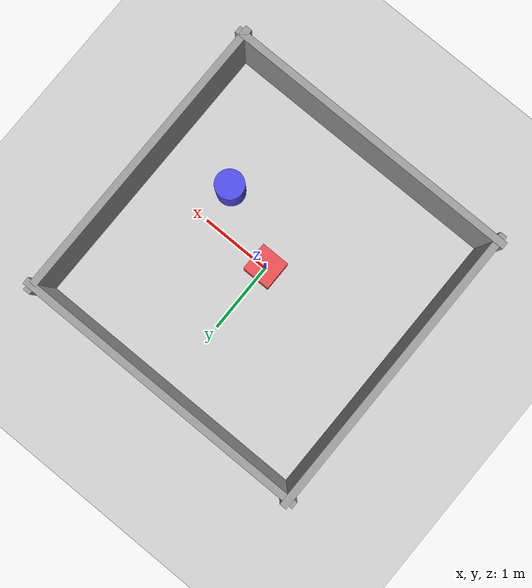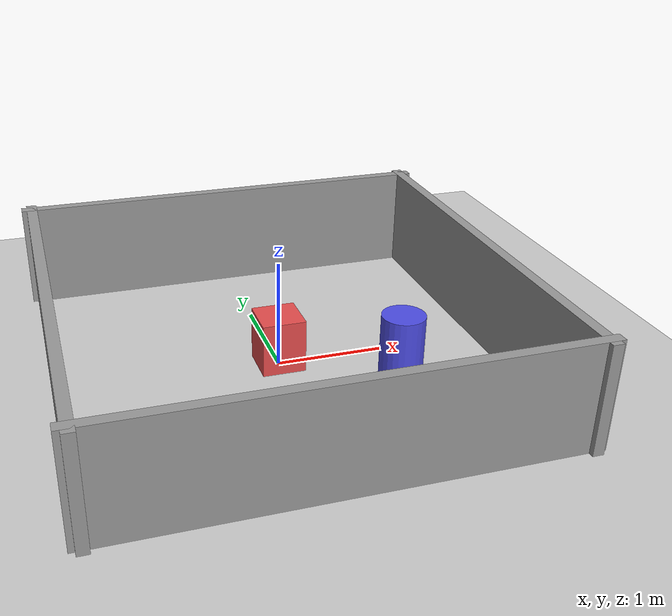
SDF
<?xml version="1.0" ?>
<sdf version="1.9">
  <world name="nav_test">
    <physics name="1ms" type="ignored">
      <max_step_size>0.001</max_step_size>
      <real_time_factor>1.0</real_time_factor>
    </physics>

    <plugin
      filename="gz-sim-physics-system"
      name="gz::sim::systems::Physics">
    </plugin>
    <plugin
      filename="gz-sim-user-commands-system"
      name="gz::sim::systems::UserCommands">
    </plugin>
    <plugin
      filename="gz-sim-scene-broadcaster-system"
      name="gz::sim::systems::SceneBroadcaster">
    </plugin>
    <plugin
      filename="gz-sim-sensors-system"
      name="gz::sim::systems::Sensors">
      <render_engine>ogre2</render_engine>
    </plugin>

    <light type="directional" name="sun">
      <cast_shadows>true</cast_shadows>
      <pose>0 0 10 0 0 0</pose>
      <diffuse>0.8 0.8 0.8 1</diffuse>
      <specular>0.2 0.2 0.2 1</specular>
      <attenuation>
        <range>1000</range>
        <constant>0.9</constant>
        <linear>0.01</linear>
        <quadratic>0.001</quadratic>
      </attenuation>
      <direction>-0.5 0.1 -0.9</direction>
    </light>

    <model name="ground_plane">
      <static>true</static>
      <link name="link">
        <collision name="collision">
          <geometry>
            <plane>
              <normal>0 0 1</normal>
              <size>100 100</size>
            </plane>
          </geometry>
        </collision>
        <visual name="visual">
          <geometry>
            <plane>
              <normal>0 0 1</normal>
              <size>100 100</size>
            </plane>
          </geometry>
          <material>
            <ambient>0.8 0.8 0.8 1</ambient>
            <diffuse>0.8 0.8 0.8 1</diffuse>
            <specular>0.8 0.8 0.8 1</specular>
          </material>
        </visual>
      </link>
    </model>

    <!-- Enclosed room: 4m x 4m, walls 0.1m thick     -->
    <!-- Room spans from (-2,-2) to (2,2)              -->
    <!-- Robot spawns at (-1.5, -1.5)                   -->

    <!-- North wall (y = 2) -->
    <model name="wall_north">
      <static>true</static>
      <pose>0 2 0.5 0 0 0</pose>
      <link name="link">
        <collision name="collision">
          <geometry>
            <box><size>4.2 0.1 1.0</size></box>
          </geometry>
        </collision>
        <visual name="visual">
          <geometry>
            <box><size>4.2 0.1 1.0</size></box>
          </geometry>
          <material>
            <ambient>0.5 0.5 0.5 1</ambient>
            <diffuse>0.6 0.6 0.6 1</diffuse>
          </material>
        </visual>
      </link>
    </model>

    <!-- South wall (y = -2) -->
    <model name="wall_south">
      <static>true</static>
      <pose>0 -2 0.5 0 0 0</pose>
      <link name="link">
        <collision name="collision">
          <geometry>
            <box><size>4.2 0.1 1.0</size></box>
          </geometry>
        </collision>
        <visual name="visual">
          <geometry>
            <box><size>4.2 0.1 1.0</size></box>
          </geometry>
          <material>
            <ambient>0.5 0.5 0.5 1</ambient>
            <diffuse>0.6 0.6 0.6 1</diffuse>
          </material>
        </visual>
      </link>
    </model>

    <!-- East wall (x = 2) -->
    <model name="wall_east">
      <static>true</static>
      <pose>2 0 0.5 0 0 0</pose>
      <link name="link">
        <collision name="collision">
          <geometry>
            <box><size>0.1 4.2 1.0</size></box>
          </geometry>
        </collision>
        <visual name="visual">
          <geometry>
            <box><size>0.1 4.2 1.0</size></box>
          </geometry>
          <material>
            <ambient>0.5 0.5 0.5 1</ambient>
            <diffuse>0.6 0.6 0.6 1</diffuse>
          </material>
        </visual>
      </link>
    </model>

    <!-- West wall (x = -2) -->
    <model name="wall_west">
      <static>true</static>
      <pose>-2 0 0.5 0 0 0</pose>
      <link name="link">
        <collision name="collision">
          <geometry>
            <box><size>0.1 4.2 1.0</size></box>
          </geometry>
        </collision>
        <visual name="visual">
          <geometry>
            <box><size>0.1 4.2 1.0</size></box>
          </geometry>
          <material>
            <ambient>0.5 0.5 0.5 1</ambient>
            <diffuse>0.6 0.6 0.6 1</diffuse>
          </material>
        </visual>
      </link>
    </model>

    <!-- Interior obstacles                            -->

    <!-- Obstacle 1: Box on direct path from start to goal -->
    <model name="obstacle_box">
      <static>true</static>
      <pose>0 0 0.25 0 0 0</pose>
      <link name="link">
        <collision name="collision">
          <geometry>
            <box><size>0.4 0.4 0.5</size></box>
          </geometry>
        </collision>
        <visual name="visual">
          <geometry>
            <box><size>0.4 0.4 0.5</size></box>
          </geometry>
          <material>
            <ambient>0.8 0.2 0.2 1</ambient>
            <diffuse>0.9 0.3 0.3 1</diffuse>
          </material>
        </visual>
      </link>
    </model>

    <!-- Obstacle 2: Cylinder near east side -->
    <model name="obstacle_cylinder">
      <static>true</static>
      <pose>1.0 -0.5 0.3 0 0 0</pose>
      <link name="link">
        <collision name="collision">
          <geometry>
            <cylinder><radius>0.2</radius><length>0.6</length></cylinder>
          </geometry>
        </collision>
        <visual name="visual">
          <geometry>
            <cylinder><radius>0.2</radius><length>0.6</length></cylinder>
          </geometry>
          <material>
            <ambient>0.2 0.2 0.8 1</ambient>
            <diffuse>0.3 0.3 0.9 1</diffuse>
          </material>
        </visual>
      </link>
    </model>
  </world>
</sdf>
